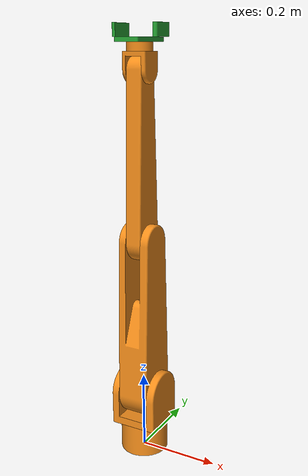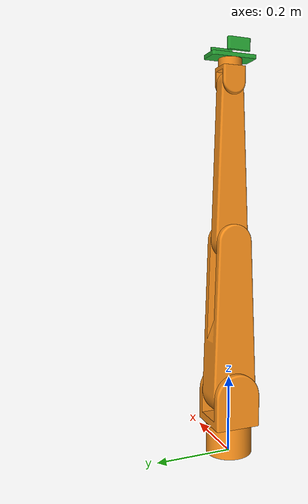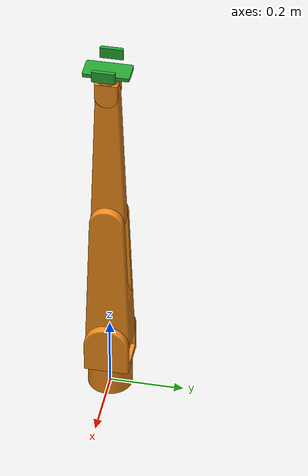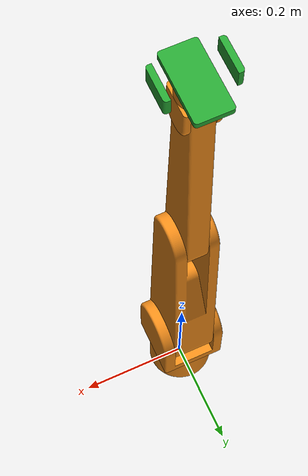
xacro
<?xml version="1.0"?>
<robot name="catarm" xmlns:xacro="http://ros.org/wiki/xacro">

  <!-- Dependencies -->
  <xacro:include filename="$(find catarm_description)/urdf/materials.xacro"/>
  <xacro:include filename="$(find catarm_description)/urdf/common.xacro"/>
  <xacro:include filename="$(find catarm_description)/urdf/base.urdf.xacro"/>
  <xacro:include filename="$(find catarm_description)/urdf/arm.urdf.xacro"/>
  <xacro:include filename="$(find catarm_description)/urdf/gripper.urdf.xacro"/>

  <!-- Link & Joint -->
  <link name="world"/>

  <xacro:base parent="world">
    <origin xyz="0 0 0" rpy="0 0 0" />
  </xacro:base>

  <xacro:arm prefix="" parent="base/link_tip">
    <origin xyz="0 0 0" rpy="0 0 0" />
  </xacro:arm>

  <xacro:gripper prefix="" parent="arm/link_tip">
    <origin xyz="0 0 0" rpy="0 0 0" />
  </xacro:gripper>

</robot>

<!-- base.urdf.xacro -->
<robot xmlns:xacro="http://ros.org/wiki/xacro">

  <!-- Field Side Parameters-->
  <xacro:arg name="field" default=""/>
  <xacro:property name="field" value="$(arg field)" />

  <!-- Constants -->
  <xacro:property name="visual_mesh_scale" value="1.0 1.0 1.0"/>
  <xacro:property name="collision_mesh_scale" value="1.0 1.0 1.0"/>

  <!-- Link & Joint -->
  <xacro:macro name="base" params="parent *joint_origin">

    <joint name="base/root" type="fixed">
      <xacro:insert_block name="joint_origin"/>
      <parent link="${parent}"/>
      <child link="base/base_link"/>
    </joint>

    <link name="base/base_link">
      <xacro:if value="${field=='blue'}">
        <visual>
          <geometry>
            <mesh filename="package://catarm_description/mesh/base/base_blue.stl" scale="${visual_mesh_scale}"/>
          </geometry>
          <material name="white"/>
        </visual>
        <collision>
          <geometry>
            <mesh filename="package://catarm_description/mesh/base/base_blue.stl" scale="${collision_mesh_scale}"/>
          </geometry>
        </collision>
      </xacro:if>

      <xacro:if value="${field=='red'}">
        <visual>
          <geometry>
            <mesh filename="package://catarm_description/mesh/base/base_red.stl" scale="${visual_mesh_scale}"/>
          </geometry>
          <material name="white"/>
        </visual>
        <collision>
          <geometry>
            <mesh filename="package://catarm_description/mesh/base/base_red.stl" scale="${collision_mesh_scale}"/>
          </geometry>
        </collision>
      </xacro:if>
    </link>

    <joint name="base/joint_tip" type="fixed">
      <parent link="base/base_link"/>
      <child link="base/link_tip"/>
      <xacro:if value="${field=='blue'}">
        <origin xyz="-0.8 0.4 0.0044" rpy="0 0 0"/>
      </xacro:if>
      <xacro:if value="${field=='red'}">
        <origin xyz="0.8 0.4 0.0044" rpy="0 0 0"/>
      </xacro:if>
    </joint>
    <link name="base/link_tip"/>

  </xacro:macro>
</robot>

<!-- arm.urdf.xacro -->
<robot xmlns:xacro="http://ros.org/wiki/xacro">

  <!-- Constants -->
  <xacro:property name="visual_mesh_scale" value="1.0 1.0 1.0"/>
  <xacro:property name="collision_mesh_scale" value="1.0 1.0 1.0"/>

  <!-- Link & Joint -->
  <xacro:macro name="arm" params="prefix parent *joint_origin">

    <joint name="${prefix}arm/root" type="fixed">
      <xacro:insert_block name="joint_origin" />
      <parent link="${parent}" />
      <child link="${prefix}arm/link0" />
    </joint>

    <link name="${prefix}arm/link0">
      <visual>
        <geometry>
          <mesh filename="package://catarm_description/mesh/arm/link0.stl" scale="${visual_mesh_scale}"/>
        </geometry>
        <material name="orange"/>
      </visual>
      <collision>
        <geometry>
          <mesh filename="package://catarm_description/mesh/arm/link0.stl" scale="${collision_mesh_scale}"/>
        </geometry>
      </collision>
    </link>

    <joint name="${prefix}arm/joint1" type="revolute">
      <parent link="${prefix}arm/link0"/>
      <child link="${prefix}arm/link1"/>
      <origin xyz="0 0 0.08" rpy="0 0 0"/>
      <axis xyz="0 0 1"/>
      <limit lower="${-90*M_PI/180}" upper="${90*M_PI/180}" effort="6"
              velocity="5" acceleration="5"/>
    </joint>

    <link name="${prefix}arm/link1">
      <visual>
        <geometry>
          <mesh filename="package://catarm_description/mesh/arm/link1.stl" scale="${visual_mesh_scale}"/>
        </geometry>
        <material name="orange"/>
      </visual>
      <collision>
        <geometry>
          <mesh filename="package://catarm_description/mesh/arm/link1.stl" scale="${collision_mesh_scale}"/>
        </geometry>
      </collision>
    </link>

    <joint name="${prefix}arm/joint2" type="revolute">
      <parent link="${prefix}arm/link1"/>
      <child link="${prefix}arm/link2"/>
      <origin xyz="0 0 0.08" rpy="${90*M_PI/180} 0 ${90*M_PI/180}"/>
      <axis xyz="0 0 1"/>
      <limit lower="${-90*M_PI/180}" upper="${90*M_PI/180}" effort="6"
              velocity="5" acceleration="5"/>
    </joint>

    <link name="${prefix}arm/link2">
      <visual>
        <geometry>
          <mesh filename="package://catarm_description/mesh/arm/link2.stl" scale="${visual_mesh_scale}"/>
        </geometry>
        <material name="orange"/>
      </visual>
      <collision>
        <geometry>
          <mesh filename="package://catarm_description/mesh/arm/link2.stl" scale="${collision_mesh_scale}"/>
        </geometry>
      </collision>
    </link>

    <joint name="${prefix}arm/joint3" type="revolute">
      <parent link="${prefix}arm/link2"/>
      <child link="${prefix}arm/link3"/>
      <origin xyz="0 0.4 0" rpy="0 0 0"/>
      <axis xyz="0 0 1"/>
      <limit lower="${-135*M_PI/180}" upper="${135*M_PI/180}" effort="6"
              velocity="5" acceleration="5"/>
    </joint>

    <link name="${prefix}arm/link3">
      <visual>
        <geometry>
          <mesh filename="package://catarm_description/mesh/arm/link3.stl" scale="${visual_mesh_scale}"/>
        </geometry>
        <material name="orange"/>
      </visual>
      <collision>
        <geometry>
          <mesh filename="package://catarm_description/mesh/arm/link3.stl" scale="${collision_mesh_scale}"/>
        </geometry>
      </collision>
    </link>

    <joint name="${prefix}arm/joint4" type="revolute">
      <parent link="${prefix}arm/link3"/>
      <child link="${prefix}arm/link4"/>
      <origin xyz="0 0.4 0" rpy="0 0 0"/>
      <axis xyz="0 0 1"/>
      <limit lower="${-90*M_PI/180}" upper="${90*M_PI/180}" effort="6"
              velocity="5" acceleration="5"/>
    </joint>

    <link name="${prefix}arm/link4">
      <visual>
        <geometry>
          <mesh filename="package://catarm_description/mesh/arm/link4.stl" scale="${visual_mesh_scale}"/>
        </geometry>
        <material name="orange"/>
      </visual>
      <collision>
        <geometry>
          <mesh filename="package://catarm_description/mesh/arm/link4.stl" scale="${collision_mesh_scale}"/>
        </geometry>
      </collision>
    </link>

    <joint name="${prefix}arm/joint5" type="revolute">
      <parent link="${prefix}arm/link4"/>
      <child link="${prefix}arm/link5"/>
      <origin xyz="0 0.04 0" rpy="${-90*M_PI/180} 0 0"/>
      <axis xyz="0 0 1"/>
      <limit lower="${-180*M_PI/180}" upper="${180*M_PI/180}" effort="6"
              velocity="5" acceleration="5"/>
    </joint>

    <link name="${prefix}arm/link5">
      <visual>
        <geometry>
          <mesh filename="package://catarm_description/mesh/arm/link5.stl" scale="${visual_mesh_scale}"/>
        </geometry>
        <material name="orange"/>
      </visual>
      <collision>
        <geometry>
          <mesh filename="package://catarm_description/mesh/arm/link5.stl" scale="${collision_mesh_scale}"/>
        </geometry>
      </collision>
    </link>

    <joint name="${prefix}arm/joint_tip" type="fixed">
      <parent link="${prefix}arm/link5"/>
      <child link="${prefix}arm/link_tip"/>
      <origin xyz="0 0 0.02" rpy="0 0 0"/>
    </joint>
    <link name="${prefix}arm/link_tip"/>

  </xacro:macro>
</robot>

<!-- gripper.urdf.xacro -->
<robot xmlns:xacro="http://ros.org/wiki/xacro">

  <!-- Constants -->
  <xacro:property name="visual_mesh_scale" value="1.0 1.0 1.0"/>
  <xacro:property name="collision_mesh_scale" value="1.0 1.0 1.0"/>

  <!-- Link & Joint -->
  <xacro:macro name="gripper" params="prefix parent *joint_origin">

    <joint name="${prefix}gripper/root" type="fixed">
      <xacro:insert_block name="joint_origin" />
      <parent link="${parent}" />
      <child link="${prefix}gripper/base_link" />
    </joint>

    <link name="${prefix}gripper/base_link">
      <visual>
        <geometry>
          <mesh filename="package://catarm_description/mesh/gripper/base_link.stl" scale="${visual_mesh_scale}"/>
        </geometry>
        <material name="green"/>
      </visual>
      <collision>
        <geometry>
          <mesh filename="package://catarm_description/mesh/gripper/base_link.stl" scale="${collision_mesh_scale}"/>
        </geometry>
      </collision>
    </link>

    <joint name="${prefix}gripper/joint1" type="prismatic">
      <parent link="${prefix}gripper/base_link"/>
      <child link="${prefix}gripper/finger1"/>
      <origin xyz="0 -0.05 0.01" rpy="${90*M_PI/180} 0 ${180*M_PI/180}"/>
      <axis xyz="0 0 1"/>
      <limit lower="0" upper="0.05" effort="6"
              velocity="5" acceleration="5"/>
    </joint>

    <link name="${prefix}gripper/finger1">
      <visual>
        <geometry>
          <mesh filename="package://catarm_description/mesh/gripper/finger1.stl" scale="${visual_mesh_scale}"/>
        </geometry>
        <material name="green"/>
      </visual>
      <collision>
        <geometry>
          <mesh filename="package://catarm_description/mesh/gripper/finger1.stl" scale="${collision_mesh_scale}"/>
        </geometry>
      </collision>
    </link>

    <joint name="${prefix}gripper/joint2" type="prismatic">
      <parent link="${prefix}gripper/base_link"/>
      <child link="${prefix}gripper/finger2"/>
      <origin xyz="0 0.05 0.01" rpy="${90*M_PI/180} 0 0"/>
      <axis xyz="0 0 1"/>
      <limit lower="0" upper="0.05" effort="6"
              velocity="5" acceleration="5"/>
      <mimic joint="${prefix}gripper/joint1" multiplier="1" offset="0" />
    </joint>

    <link name="${prefix}gripper/finger2">
      <visual>
        <geometry>
          <mesh filename="package://catarm_description/mesh/gripper/finger2.stl" scale="${visual_mesh_scale}"/>
        </geometry>
        <material name="green"/>
      </visual>
      <collision>
        <geometry>
          <mesh filename="package://catarm_description/mesh/gripper/finger2.stl" scale="${collision_mesh_scale}"/>
        </geometry>
      </collision>
    </link>

    <joint name="${prefix}gripper/joint_tip" type="fixed">
      <parent link="${prefix}gripper/base_link"/>
      <child link="${prefix}gripper/link_tip"/>
      <origin xyz="0 0 0.03" rpy="0 0 0"/>
    </joint>
    <link name="${prefix}gripper/link_tip"/>

  </xacro:macro>
</robot>
